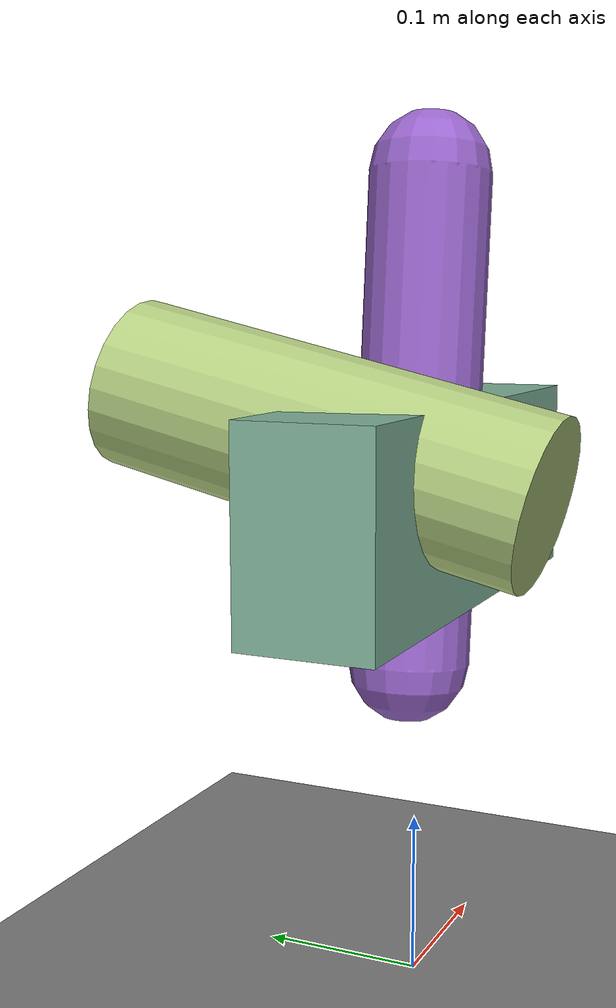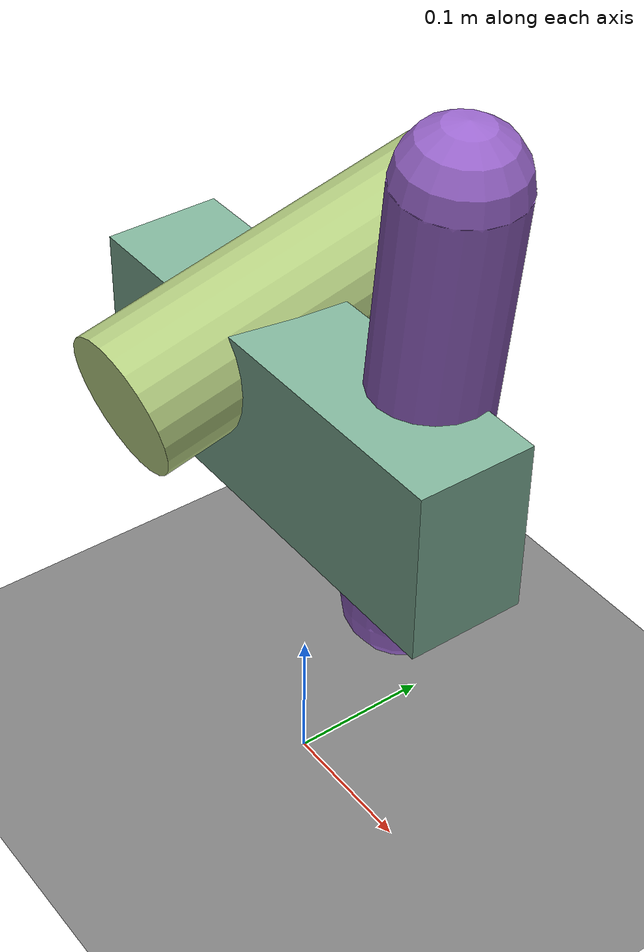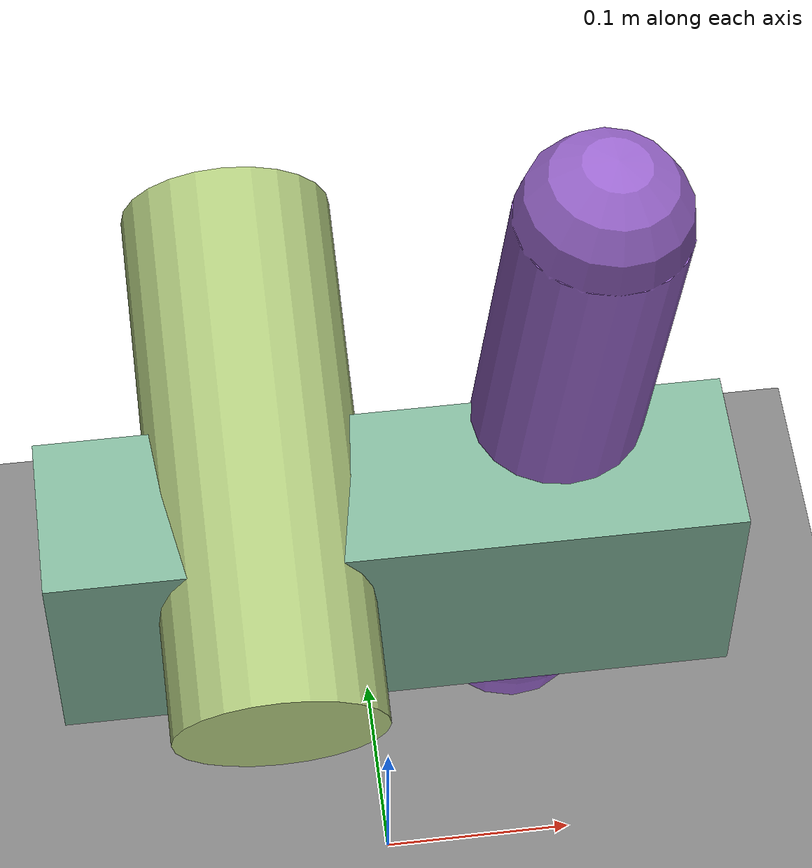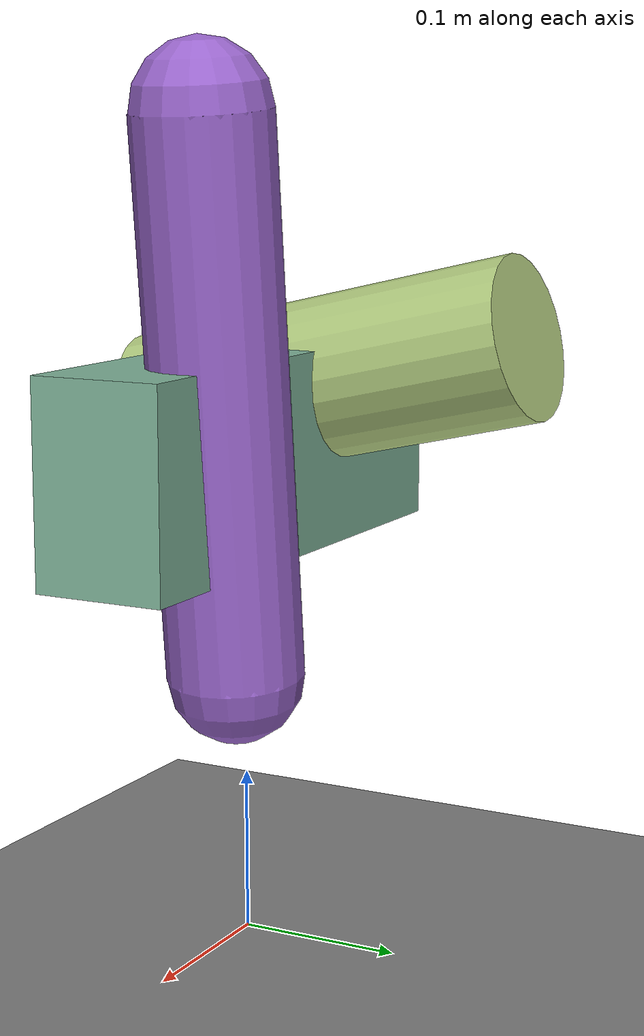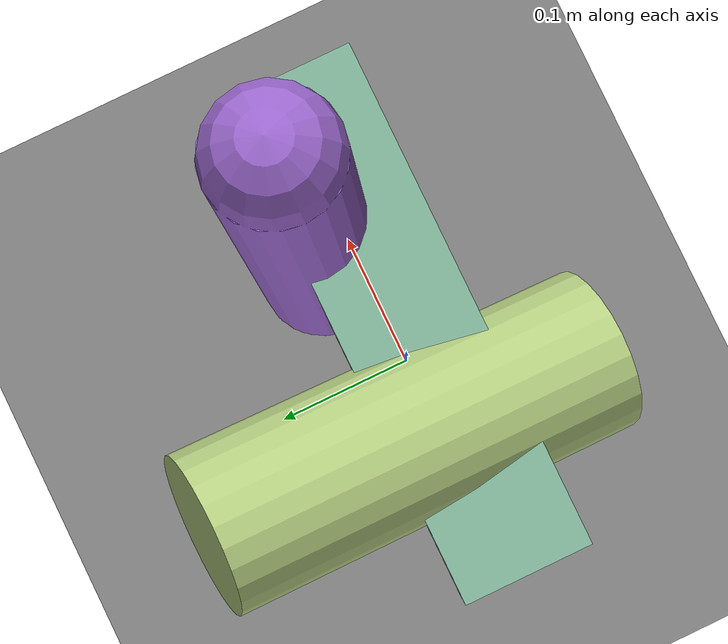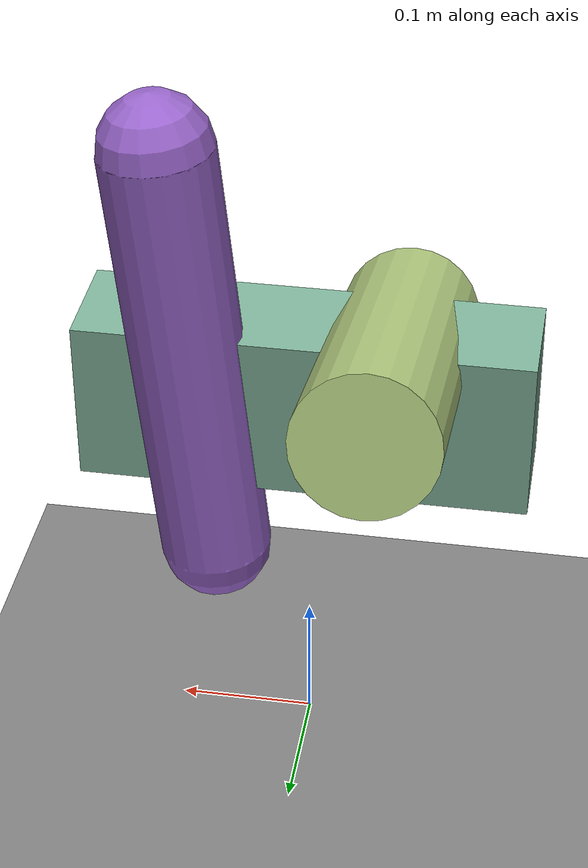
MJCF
<?xml version="1.0" ?>
<mujoco model="MuJoCo Model">
    <compiler angle="radian"/>
    <statistic extent="1" />
    <option gravity="0 0 -9.81" integrator="RK4" timestep='0.02'/>
    <size njmax="795" nconmax="250" nstack="631875" />
    <visual>
        <quality shadowsize="2048" />
        <map znear="0.8" zfar="3.2"/>
    </visual>
    <default class="main">
        <joint limited="true" armature="0.01" damping="0.7" /> <!-- damping was 0.2-->
        <geom margin="0.001" />
    </default>
    <asset>
        <material name="material1" rgba="0.5 0.7 0.6 1" specular="0.247985" shininess="0.01864" reflectance="0.032382" />
        <material name="material2" rgba="0.7 0.8 0.5 1" specular="0.977985" shininess="0.51864" reflectance="0.0" />
        <material name="material3" rgba="0.6 0.4 0.8 1" specular="0.177985" shininess="0.31864" reflectance="0.6" />
    </asset>
    <worldbody>
        <geom name="floor0" size="1 1 1" pos="0 0 0" type="plane" />
        <light pos="1 0 1.5" dir="-0.371391 0 -0.928477" castshadow="false" cutoff="90" exponent="1" diffuse="1 1 1" specular="0 0 0" />
        <body name="floor0" pos="1.5 1.4 0">
            <inertial pos="1.5 1.4 0" mass="0" diaginertia="0 0 0" />
        </body>
        <body name="floating_obj" pos="0 0 0.3">

            <!-- full rot -->
            <inertial pos="0 0 0" mass="1" diaginertia="0.166667 0.166667 0.166667" />

            <joint name="obj_jnt_x" pos="0 0 0" axis="1 0 0" type="slide" limited='true' range="-.5 .5" damping="0.01" />
            <joint name="obj_jnt_y" pos="0 0 0" axis="0 1 0" type="slide" limited='true' range="-.5 .5" damping="0.01" />
            <joint name="obj_jnt_z" pos="0 0 0" axis="0 0 1" type="slide" limited='true' range="0 .4" damping="0.01" />

            <joint name="obj_jnt_wx" pos="0 0 0" axis="1 0 0" type="hinge" limited='false' damping="0.01" />
            <joint name="obj_jnt_wy" pos="0 0 0" axis="0 1 0" type="hinge" limited='false' damping="0.01" />
            <joint name="obj_jnt_wz" pos="0 0 0" axis="0 0 1" type="hinge" limited='false' damping="0.01" />

            <geom name="geom0" size="0.16 0.04 0.06" type="box" material="material1"/>
            <geom name="geom1" size="0.05 0.13" type="cylinder" pos="-0.06 0.03 0.04" material="material2" euler="1.8 0 0"/>
            <geom name="geom2" size="0.04 0.16" type="capsule" pos="0.08 0.03 0.04" material="material3" euler="0 0.1 0"/>
        </body>
        <body name="external_camera_body_0" pos="0 0 0">
            <camera euler="0 1 1.57" fovy="45" name="external_camera_0" pos="1.8 0 1.2"></camera>
        </body>
    </worldbody>
    <actuator>

        <motor gear="16" joint="obj_jnt_x" name="obj:motionX"/>
        <motor gear="16" joint="obj_jnt_y" name="obj:motionY"/>
        <motor gear="16" joint="obj_jnt_z" name="obj:motionZ"/>
        <!-- for single rot-->
        <motor gear="4" joint="obj_jnt_wx" name="obj:motionWX"/>
        <motor gear="4" joint="obj_jnt_wy" name="obj:motionWY"/>
        <motor gear="4" joint="obj_jnt_wz" name="obj:motionWZ"/>

    </actuator>
</mujoco>
